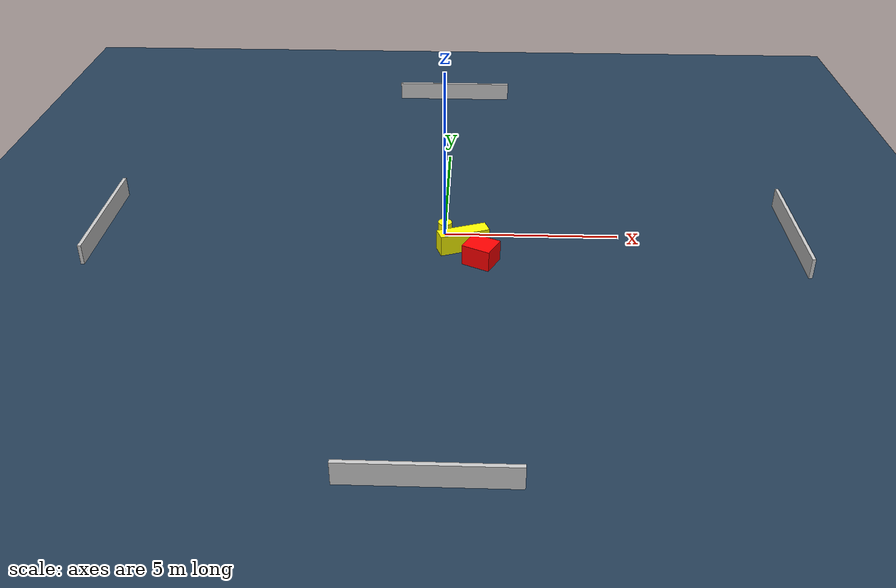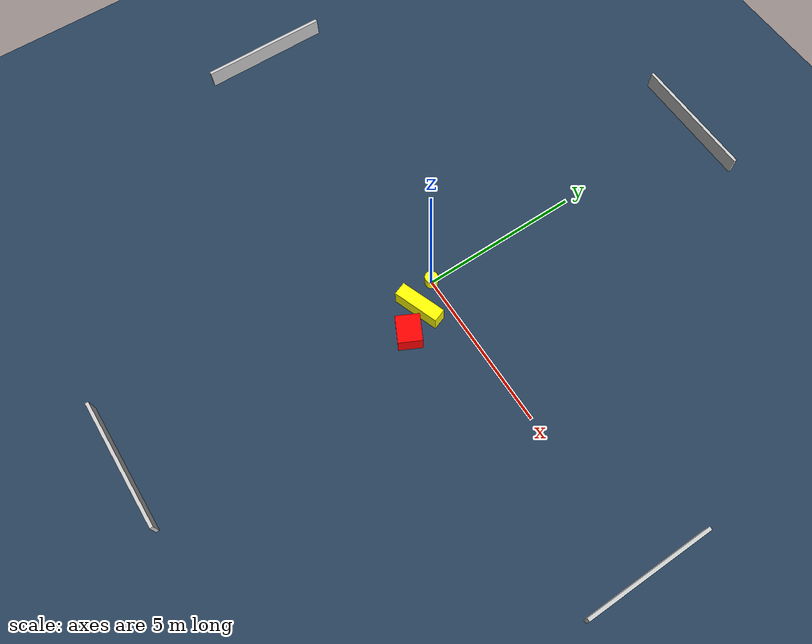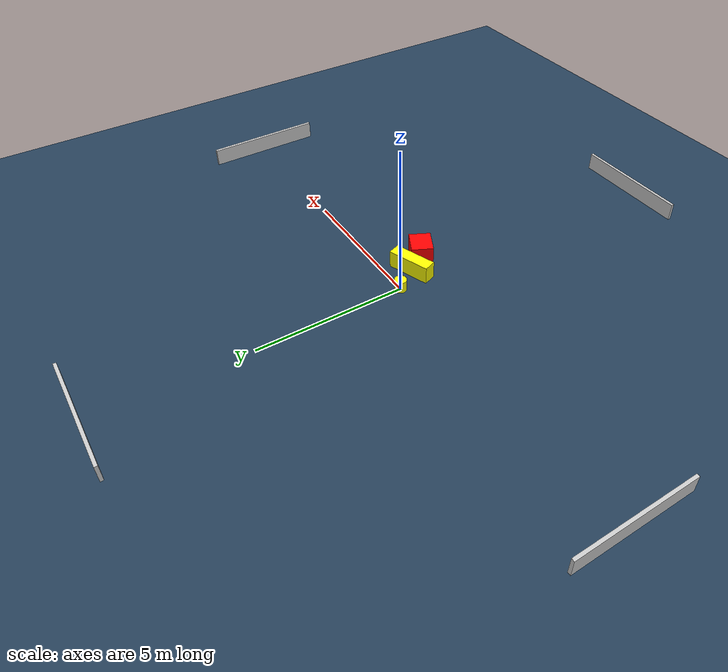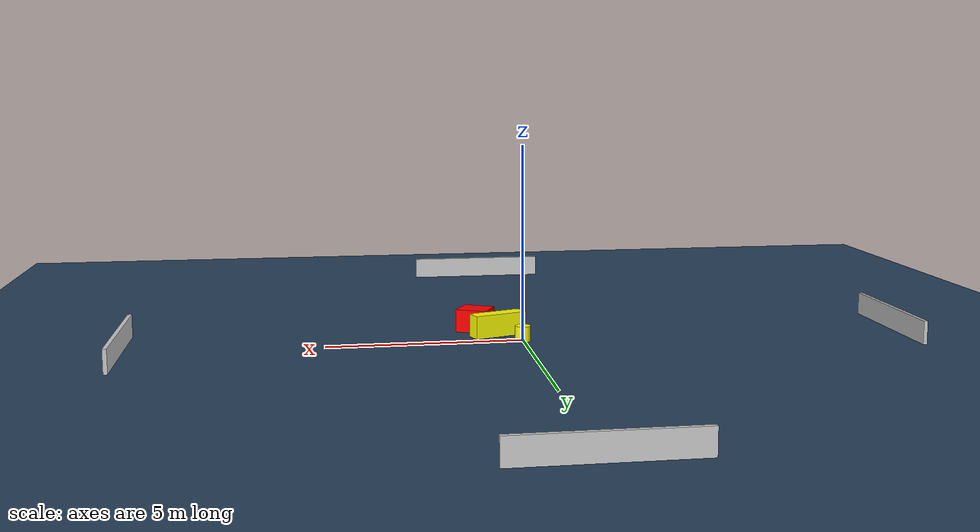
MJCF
<?xml version="1.0" ?>
<mujoco model="generated_environment">
  <option timestep="0.01" integrator="RK4" cone="elliptic"/>
  <default>
    <geom density="1"/>
  </default>
  <asset>
    <texture builtin="gradient" height="3072" name="skybox" rgb1="0.3 0.5 0.7" rgb2="0 0 0" type="skybox" width="512"/>
    <texture builtin="checker" height="300" name="groundplane" rgb1="0.2 0.3 0.4" rgb2="0.1 0.2 0.3" type="2d" width="300"/>
    <material name="groundplane" reflectance="0.2" texrepeat="5 5" texture="groundplane"/>
  </asset>
  <worldbody>
    <light dir="0 0 -1" directional="true" pos="0 0 1.5"/>
    <geom condim="3" friction="0.5 0.005 0.001" material="groundplane" name="floor" pos="0 0 0" size="0 0 0.05" type="plane"/>
    <body name="walls">
      <geom name="wall_1" condim="4" pos="-10.0 0.0 0.3" rgba="0.800000011920929 0.800000011920929 0.800000011920929 1.0" size="0.05 2.0 0.3" type="box"/>
      <geom name="wall_2" condim="4" pos="10.0 0.0 0.3" rgba="0.800000011920929 0.800000011920929 0.800000011920929 1.0" size="0.05 2.0 0.3" type="box"/>
      <geom name="wall_3" condim="4" pos="0.0 -10.0 0.3" rgba="0.800000011920929 0.800000011920929 0.800000011920929 1.0" size="2.0 0.05 0.3" type="box"/>
      <geom name="wall_4" condim="4" pos="0.0 10.0 0.3" rgba="0.800000011920929 0.800000011920929 0.800000011920929 1.0" size="2.0 0.05 0.3" type="box"/>
    </body>
    <body name="robot">
      <joint name="joint_x" type="slide" pos="0 0 0" axis="1 0 0"/>
      <joint name="joint_y" type="slide" pos="0 0 0" axis="0 1 0"/>
      <geom name="robot" type="cylinder" pos="0.0 0.0 0.2" size="0.2 0.2 0.0" mass="5.0" friction="1.0 0.005 0.0001" condim="4" rgba="1.0 1.0 0.0 1.0"/>
    </body>
    <body name="obstacle_1_movable">
      <geom name="obstacle_1_movable" condim="4" pos="0.5392578635064592 -0.7714495811897615 0.3" euler="0 0 110.1462662846082" friction="0.0 0.005 0.001" rgba="1.0 1.0 0.0 1.0" size="0.20813876554508082 0.7222979880224116 0.3" type="box" mass="0.1"/>
      <joint type="free"/>
    </body>
    <body name="obstacle_2_static">
      <geom name="obstacle_2_static" condim="4" pos="1.0506164865103793 -1.4702733246660107 0.3" euler="0 0 153.33441992395896" friction="0.0 0.005 0.001" rgba="1.0 0.0 0.0 1.0" size="0.4169158024557853 0.36181064582453226 0.3" type="box"/>
    </body>
  </worldbody>
  <actuator>
    <motor name="actuator_x" joint="joint_x" gear="1" ctrlrange="-1 1"/>
    <motor name="actuator_y" joint="joint_y" gear="1" ctrlrange="-1 1"/>
  </actuator>
</mujoco>
